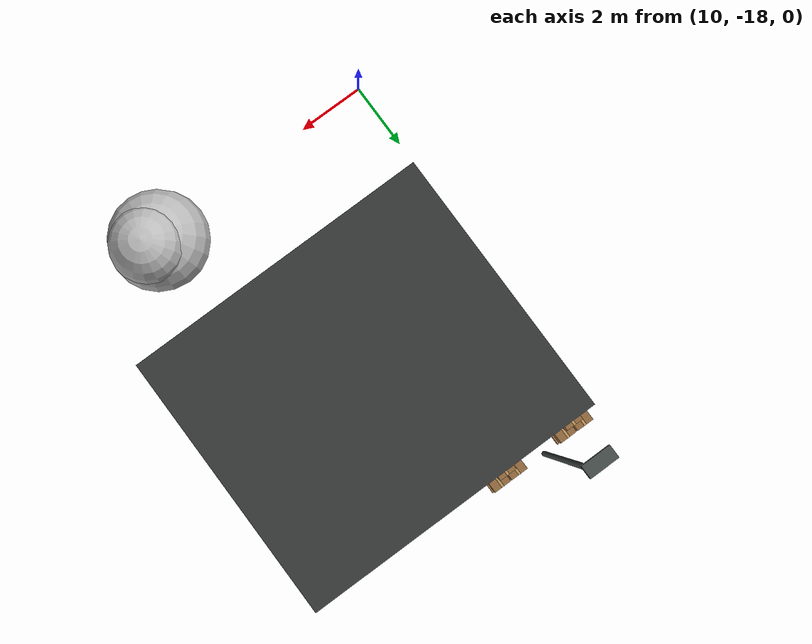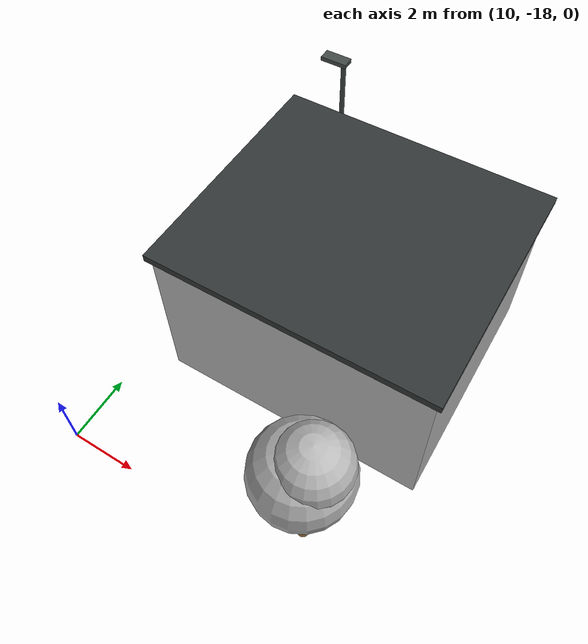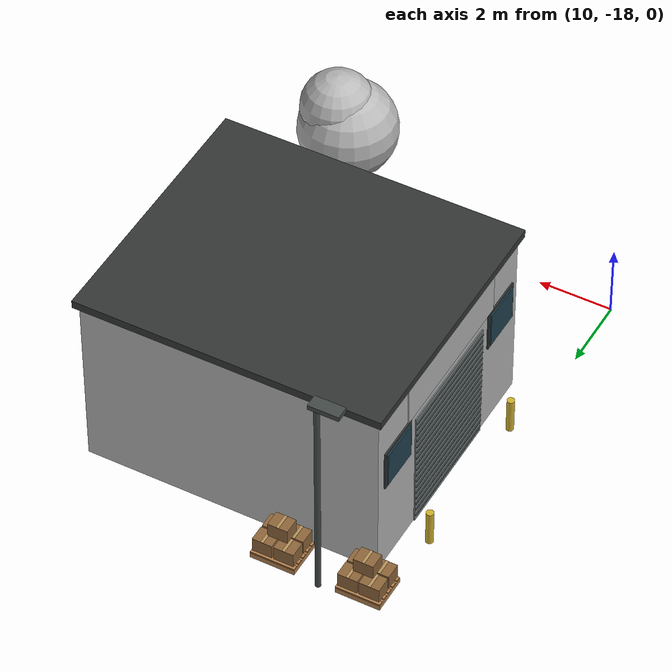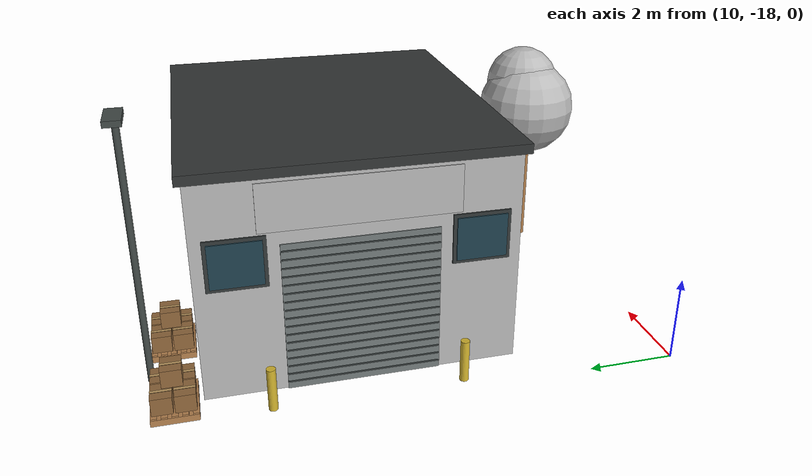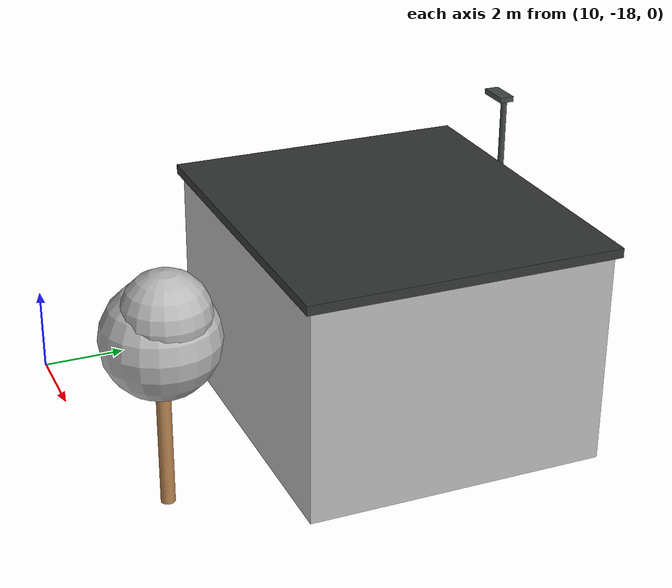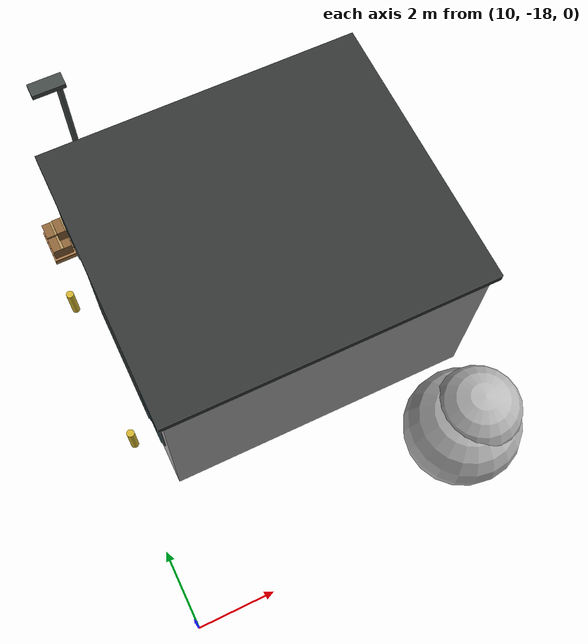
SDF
<sdf version="1.5">
 <world name="default">
  <include><uri>model://sun</uri></include>
  <model name="brick_warehouse">
   <static>true</static>
   <pose>15 -11 0.003 0 0 0</pose>
   <link name="structure">
    <visual name="main_building">
     <pose>0 0 2.5 0 0 0</pose>
     <geometry><box><size>8 7 5</size></box></geometry>
     <material>
      <script>
       <uri>file:///home/fxxk/px4_agent/scene/materials/scripts</uri>
       <uri>file:///home/fxxk/px4_agent/scene/materials/textures</uri>
       <name>Yard/brick</name>
      </script>
     </material>
    </visual>
    <collision name="main_building_collision">
     <pose>0 0 2.5 0 0 0</pose>
     <geometry><box><size>8 7 5</size></box></geometry>
     <surface><friction><ode><mu>1.0</mu><mu2>1.0</mu2></ode></friction></surface>
    </collision>
    <visual name="flat_roof">
     <pose>0 0 5.1 0 0 0</pose>
     <geometry><box><size>8.25 7.25 0.22</size></box></geometry>
     <material>
      <ambient>0.2 0.21 0.21 1</ambient>
      <diffuse>0.2 0.21 0.21 1</diffuse>
      <specular>0.04 0.04 0.04 1</specular>
     </material>
    </visual>
    <collision name="flat_roof_collision">
     <pose>0 0 5.1 0 0 0</pose>
     <geometry><box><size>8.25 7.25 0.22</size></box></geometry>
     <surface><friction><ode><mu>1.0</mu><mu2>1.0</mu2></ode></friction></surface>
    </collision>
    <visual name="loading_door">
     <pose>-4.022 0 1.75 0 0 0</pose>
     <geometry><box><size>0.032 3.4 3.5</size></box></geometry>
     <material>
      <ambient>0.45 0.48 0.48 1</ambient>
      <diffuse>0.45 0.48 0.48 1</diffuse>
      <specular>0.04 0.04 0.04 1</specular>
     </material>
    </visual>
    <visual name="door_slat_0">
     <pose>-4.048 0 0.18 0 0 0</pose>
     <geometry><box><size>0.036 3.36 0.025</size></box></geometry>
     <material>
      <ambient>0.27 0.3 0.3 1</ambient>
      <diffuse>0.27 0.3 0.3 1</diffuse>
      <specular>0.04 0.04 0.04 1</specular>
     </material>
    </visual>
    <visual name="door_slat_1">
     <pose>-4.048 0 0.378125 0 0 0</pose>
     <geometry><box><size>0.036 3.36 0.025</size></box></geometry>
     <material>
      <ambient>0.27 0.3 0.3 1</ambient>
      <diffuse>0.27 0.3 0.3 1</diffuse>
      <specular>0.04 0.04 0.04 1</specular>
     </material>
    </visual>
    <visual name="door_slat_2">
     <pose>-4.048 0 0.57625 0 0 0</pose>
     <geometry><box><size>0.036 3.36 0.025</size></box></geometry>
     <material>
      <ambient>0.27 0.3 0.3 1</ambient>
      <diffuse>0.27 0.3 0.3 1</diffuse>
      <specular>0.04 0.04 0.04 1</specular>
     </material>
    </visual>
    <visual name="door_slat_3">
     <pose>-4.048 0 0.774375 0 0 0</pose>
     <geometry><box><size>0.036 3.36 0.025</size></box></geometry>
     <material>
      <ambient>0.27 0.3 0.3 1</ambient>
      <diffuse>0.27 0.3 0.3 1</diffuse>
      <specular>0.04 0.04 0.04 1</specular>
     </material>
    </visual>
    <visual name="door_slat_4">
     <pose>-4.048 0 0.9725 0 0 0</pose>
     <geometry><box><size>0.036 3.36 0.025</size></box></geometry>
     <material>
      <ambient>0.27 0.3 0.3 1</ambient>
      <diffuse>0.27 0.3 0.3 1</diffuse>
      <specular>0.04 0.04 0.04 1</specular>
     </material>
    </visual>
    <visual name="door_slat_5">
     <pose>-4.048 0 1.170625 0 0 0</pose>
     <geometry><box><size>0.036 3.36 0.025</size></box></geometry>
     <material>
      <ambient>0.27 0.3 0.3 1</ambient>
      <diffuse>0.27 0.3 0.3 1</diffuse>
      <specular>0.04 0.04 0.04 1</specular>
     </material>
    </visual>
    <visual name="door_slat_6">
     <pose>-4.048 0 1.36875 0 0 0</pose>
     <geometry><box><size>0.036 3.36 0.025</size></box></geometry>
     <material>
      <ambient>0.27 0.3 0.3 1</ambient>
      <diffuse>0.27 0.3 0.3 1</diffuse>
      <specular>0.04 0.04 0.04 1</specular>
     </material>
    </visual>
    <visual name="door_slat_7">
     <pose>-4.048 0 1.566875 0 0 0</pose>
     <geometry><box><size>0.036 3.36 0.025</size></box></geometry>
     <material>
      <ambient>0.27 0.3 0.3 1</ambient>
      <diffuse>0.27 0.3 0.3 1</diffuse>
      <specular>0.04 0.04 0.04 1</specular>
     </material>
    </visual>
    <visual name="door_slat_8">
     <pose>-4.048 0 1.765 0 0 0</pose>
     <geometry><box><size>0.036 3.36 0.025</size></box></geometry>
     <material>
      <ambient>0.27 0.3 0.3 1</ambient>
      <diffuse>0.27 0.3 0.3 1</diffuse>
      <specular>0.04 0.04 0.04 1</specular>
     </material>
    </visual>
    <visual name="door_slat_9">
     <pose>-4.048 0 1.963125 0 0 0</pose>
     <geometry><box><size>0.036 3.36 0.025</size></box></geometry>
     <material>
      <ambient>0.27 0.3 0.3 1</ambient>
      <diffuse>0.27 0.3 0.3 1</diffuse>
      <specular>0.04 0.04 0.04 1</specular>
     </material>
    </visual>
    <visual name="door_slat_10">
     <pose>-4.048 0 2.16125 0 0 0</pose>
     <geometry><box><size>0.036 3.36 0.025</size></box></geometry>
     <material>
      <ambient>0.27 0.3 0.3 1</ambient>
      <diffuse>0.27 0.3 0.3 1</diffuse>
      <specular>0.04 0.04 0.04 1</specular>
     </material>
    </visual>
    <visual name="door_slat_11">
     <pose>-4.048 0 2.359375 0 0 0</pose>
     <geometry><box><size>0.036 3.36 0.025</size></box></geometry>
     <material>
      <ambient>0.27 0.3 0.3 1</ambient>
      <diffuse>0.27 0.3 0.3 1</diffuse>
      <specular>0.04 0.04 0.04 1</specular>
     </material>
    </visual>
    <visual name="door_slat_12">
     <pose>-4.048 0 2.5575 0 0 0</pose>
     <geometry><box><size>0.036 3.36 0.025</size></box></geometry>
     <material>
      <ambient>0.27 0.3 0.3 1</ambient>
      <diffuse>0.27 0.3 0.3 1</diffuse>
      <specular>0.04 0.04 0.04 1</specular>
     </material>
    </visual>
    <visual name="door_slat_13">
     <pose>-4.048 0 2.755625 0 0 0</pose>
     <geometry><box><size>0.036 3.36 0.025</size></box></geometry>
     <material>
      <ambient>0.27 0.3 0.3 1</ambient>
      <diffuse>0.27 0.3 0.3 1</diffuse>
      <specular>0.04 0.04 0.04 1</specular>
     </material>
    </visual>
    <visual name="door_slat_14">
     <pose>-4.048 0 2.95375 0 0 0</pose>
     <geometry><box><size>0.036 3.36 0.025</size></box></geometry>
     <material>
      <ambient>0.27 0.3 0.3 1</ambient>
      <diffuse>0.27 0.3 0.3 1</diffuse>
      <specular>0.04 0.04 0.04 1</specular>
     </material>
    </visual>
    <visual name="door_slat_15">
     <pose>-4.048 0 3.151875 0 0 0</pose>
     <geometry><box><size>0.036 3.36 0.025</size></box></geometry>
     <material>
      <ambient>0.27 0.3 0.3 1</ambient>
      <diffuse>0.27 0.3 0.3 1</diffuse>
      <specular>0.04 0.04 0.04 1</specular>
     </material>
    </visual>
    <visual name="door_slat_16">
     <pose>-4.048 0 3.35 0 0 0</pose>
     <geometry><box><size>0.036 3.36 0.025</size></box></geometry>
     <material>
      <ambient>0.27 0.3 0.3 1</ambient>
      <diffuse>0.27 0.3 0.3 1</diffuse>
      <specular>0.04 0.04 0.04 1</specular>
     </material>
    </visual>
    <visual name="front_window_frame_-1">
     <pose>-4.033 -2.6 3.17 0 0 0</pose>
     <geometry><box><size>0.044 1.28 1.15</size></box></geometry>
     <material>
      <ambient>0.2 0.22 0.22 1</ambient>
      <diffuse>0.2 0.22 0.22 1</diffuse>
      <specular>0.04 0.04 0.04 1</specular>
     </material>
    </visual>
    <visual name="front_window_-1">
     <pose>-4.064 -2.6 3.17 0 0 0</pose>
     <geometry><box><size>0.048 1.12 0.99</size></box></geometry>
     <material>
      <ambient>0.12 0.25 0.3 1</ambient>
      <diffuse>0.12 0.25 0.3 1</diffuse>
      <specular>0.04 0.04 0.04 1</specular>
     </material>
    </visual>
    <visual name="front_window_frame_1">
     <pose>-4.033 2.6 3.17 0 0 0</pose>
     <geometry><box><size>0.044 1.28 1.15</size></box></geometry>
     <material>
      <ambient>0.2 0.22 0.22 1</ambient>
      <diffuse>0.2 0.22 0.22 1</diffuse>
      <specular>0.04 0.04 0.04 1</specular>
     </material>
    </visual>
    <visual name="front_window_1">
     <pose>-4.064 2.6 3.17 0 0 0</pose>
     <geometry><box><size>0.048 1.12 0.99</size></box></geometry>
     <material>
      <ambient>0.12 0.25 0.3 1</ambient>
      <diffuse>0.12 0.25 0.3 1</diffuse>
      <specular>0.04 0.04 0.04 1</specular>
     </material>
    </visual>
    <visual name="warehouse_name">
     <pose>-4.06 0 4.35 0 0 0</pose>
     <geometry><box><size>0.028 4.3 1.075</size></box></geometry>
     <material>
      <script>
       <uri>file:///home/fxxk/px4_agent/scene/materials/scripts</uri>
       <uri>file:///home/fxxk/px4_agent/scene/materials/textures</uri>
       <name>Yard/warehouse_sign</name>
      </script>
     </material>
    </visual>
    <visual name="dock_bollard_0">
     <pose>-4.65 -2.1 0.5 0 0 0</pose>
     <geometry><cylinder><radius>0.1</radius><length>1</length></cylinder></geometry>
     <material>
      <ambient>0.82 0.7 0.18 1</ambient>
      <diffuse>0.82 0.7 0.18 1</diffuse>
      <specular>0.04 0.04 0.04 1</specular>
     </material>
    </visual>
    <collision name="dock_bollard_0_collision">
     <pose>-4.65 -2.1 0.5 0 0 0</pose>
     <geometry><cylinder><radius>0.1</radius><length>1</length></cylinder></geometry>
     <surface><friction><ode><mu>1.0</mu><mu2>1.0</mu2></ode></friction></surface>
    </collision>
    <visual name="dock_bollard_1">
     <pose>-4.65 2.1 0.5 0 0 0</pose>
     <geometry><cylinder><radius>0.1</radius><length>1</length></cylinder></geometry>
     <material>
      <ambient>0.82 0.7 0.18 1</ambient>
      <diffuse>0.82 0.7 0.18 1</diffuse>
      <specular>0.04 0.04 0.04 1</specular>
     </material>
    </visual>
    <collision name="dock_bollard_1_collision">
     <pose>-4.65 2.1 0.5 0 0 0</pose>
     <geometry><cylinder><radius>0.1</radius><length>1</length></cylinder></geometry>
     <surface><friction><ode><mu>1.0</mu><mu2>1.0</mu2></ode></friction></surface>
    </collision>
   </link>
  </model>
  <model name="cartons_pallet_1">
   <static>true</static>
   <pose>10.95 -6.9 0.003 0 0 0</pose>
   <link name="structure">
    <visual name="pallet_collision_base">
     <pose>0 0 0.075 0 0 0</pose>
     <geometry><box><size>1.2 1 0.15</size></box></geometry>
     <material>
      <script>
       <uri>file:///home/fxxk/px4_agent/scene/materials/scripts</uri>
       <uri>file:///home/fxxk/px4_agent/scene/materials/textures</uri>
       <name>Yard/wood</name>
      </script>
     </material>
    </visual>
    <collision name="pallet_collision_base_collision">
     <pose>0 0 0.075 0 0 0</pose>
     <geometry><box><size>1.2 1 0.15</size></box></geometry>
     <surface><friction><ode><mu>1.0</mu><mu2>1.0</mu2></ode></friction></surface>
    </collision>
    <visual name="pallet_slat_0">
     <pose>0 -0.43 0.168 0 0 0</pose>
     <geometry><box><size>1.2 0.13 0.035</size></box></geometry>
     <material>
      <script>
       <uri>file:///home/fxxk/px4_agent/scene/materials/scripts</uri>
       <uri>file:///home/fxxk/px4_agent/scene/materials/textures</uri>
       <name>Yard/wood</name>
      </script>
     </material>
    </visual>
    <visual name="pallet_slat_1">
     <pose>0 -0.215 0.168 0 0 0</pose>
     <geometry><box><size>1.2 0.13 0.035</size></box></geometry>
     <material>
      <script>
       <uri>file:///home/fxxk/px4_agent/scene/materials/scripts</uri>
       <uri>file:///home/fxxk/px4_agent/scene/materials/textures</uri>
       <name>Yard/wood</name>
      </script>
     </material>
    </visual>
    <visual name="pallet_slat_2">
     <pose>0 0 0.168 0 0 0</pose>
     <geometry><box><size>1.2 0.13 0.035</size></box></geometry>
     <material>
      <script>
       <uri>file:///home/fxxk/px4_agent/scene/materials/scripts</uri>
       <uri>file:///home/fxxk/px4_agent/scene/materials/textures</uri>
       <name>Yard/wood</name>
      </script>
     </material>
    </visual>
    <visual name="pallet_slat_3">
     <pose>0 0.215 0.168 0 0 0</pose>
     <geometry><box><size>1.2 0.13 0.035</size></box></geometry>
     <material>
      <script>
       <uri>file:///home/fxxk/px4_agent/scene/materials/scripts</uri>
       <uri>file:///home/fxxk/px4_agent/scene/materials/textures</uri>
       <name>Yard/wood</name>
      </script>
     </material>
    </visual>
    <visual name="pallet_slat_4">
     <pose>0 0.43 0.168 0 0 0</pose>
     <geometry><box><size>1.2 0.13 0.035</size></box></geometry>
     <material>
      <script>
       <uri>file:///home/fxxk/px4_agent/scene/materials/scripts</uri>
       <uri>file:///home/fxxk/px4_agent/scene/materials/textures</uri>
       <name>Yard/wood</name>
      </script>
     </material>
    </visual>
    <visual name="carton_0">
     <pose>-0.29 -0.24 0.43 0 0 0</pose>
     <geometry><box><size>0.54 0.44 0.4</size></box></geometry>
     <material>
      <ambient>0.56 0.4 0.23 1</ambient>
      <diffuse>0.56 0.4 0.23 1</diffuse>
      <specular>0.04 0.04 0.04 1</specular>
     </material>
    </visual>
    <collision name="carton_0_collision">
     <pose>-0.29 -0.24 0.43 0 0 0</pose>
     <geometry><box><size>0.54 0.44 0.4</size></box></geometry>
     <surface><friction><ode><mu>1.0</mu><mu2>1.0</mu2></ode></friction></surface>
    </collision>
    <visual name="packing_tape_0">
     <pose>-0.29 -0.24 0.635 0 0 0</pose>
     <geometry><box><size>0.075 0.442 0.008</size></box></geometry>
     <material>
      <ambient>0.72 0.58 0.36 1</ambient>
      <diffuse>0.72 0.58 0.36 1</diffuse>
      <specular>0.04 0.04 0.04 1</specular>
     </material>
    </visual>
    <visual name="carton_1">
     <pose>0.29 -0.24 0.43 0 0 0</pose>
     <geometry><box><size>0.54 0.44 0.4</size></box></geometry>
     <material>
      <ambient>0.56 0.4 0.23 1</ambient>
      <diffuse>0.56 0.4 0.23 1</diffuse>
      <specular>0.04 0.04 0.04 1</specular>
     </material>
    </visual>
    <collision name="carton_1_collision">
     <pose>0.29 -0.24 0.43 0 0 0</pose>
     <geometry><box><size>0.54 0.44 0.4</size></box></geometry>
     <surface><friction><ode><mu>1.0</mu><mu2>1.0</mu2></ode></friction></surface>
    </collision>
    <visual name="packing_tape_1">
     <pose>0.29 -0.24 0.635 0 0 0</pose>
     <geometry><box><size>0.075 0.442 0.008</size></box></geometry>
     <material>
      <ambient>0.72 0.58 0.36 1</ambient>
      <diffuse>0.72 0.58 0.36 1</diffuse>
      <specular>0.04 0.04 0.04 1</specular>
     </material>
    </visual>
    <visual name="carton_2">
     <pose>-0.29 0.24 0.43 0 0 0</pose>
     <geometry><box><size>0.54 0.44 0.4</size></box></geometry>
     <material>
      <ambient>0.56 0.4 0.23 1</ambient>
      <diffuse>0.56 0.4 0.23 1</diffuse>
      <specular>0.04 0.04 0.04 1</specular>
     </material>
    </visual>
    <collision name="carton_2_collision">
     <pose>-0.29 0.24 0.43 0 0 0</pose>
     <geometry><box><size>0.54 0.44 0.4</size></box></geometry>
     <surface><friction><ode><mu>1.0</mu><mu2>1.0</mu2></ode></friction></surface>
    </collision>
    <visual name="packing_tape_2">
     <pose>-0.29 0.24 0.635 0 0 0</pose>
     <geometry><box><size>0.075 0.442 0.008</size></box></geometry>
     <material>
      <ambient>0.72 0.58 0.36 1</ambient>
      <diffuse>0.72 0.58 0.36 1</diffuse>
      <specular>0.04 0.04 0.04 1</specular>
     </material>
    </visual>
    <visual name="carton_3">
     <pose>0.29 0.24 0.43 0 0 0</pose>
     <geometry><box><size>0.54 0.44 0.4</size></box></geometry>
     <material>
      <ambient>0.56 0.4 0.23 1</ambient>
      <diffuse>0.56 0.4 0.23 1</diffuse>
      <specular>0.04 0.04 0.04 1</specular>
     </material>
    </visual>
    <collision name="carton_3_collision">
     <pose>0.29 0.24 0.43 0 0 0</pose>
     <geometry><box><size>0.54 0.44 0.4</size></box></geometry>
     <surface><friction><ode><mu>1.0</mu><mu2>1.0</mu2></ode></friction></surface>
    </collision>
    <visual name="packing_tape_3">
     <pose>0.29 0.24 0.635 0 0 0</pose>
     <geometry><box><size>0.075 0.442 0.008</size></box></geometry>
     <material>
      <ambient>0.72 0.58 0.36 1</ambient>
      <diffuse>0.72 0.58 0.36 1</diffuse>
      <specular>0.04 0.04 0.04 1</specular>
     </material>
    </visual>
    <visual name="carton_4">
     <pose>0 0 0.87 0 0 0</pose>
     <geometry><box><size>0.54 0.44 0.4</size></box></geometry>
     <material>
      <ambient>0.56 0.4 0.23 1</ambient>
      <diffuse>0.56 0.4 0.23 1</diffuse>
      <specular>0.04 0.04 0.04 1</specular>
     </material>
    </visual>
    <collision name="carton_4_collision">
     <pose>0 0 0.87 0 0 0</pose>
     <geometry><box><size>0.54 0.44 0.4</size></box></geometry>
     <surface><friction><ode><mu>1.0</mu><mu2>1.0</mu2></ode></friction></surface>
    </collision>
    <visual name="packing_tape_4">
     <pose>0 0 1.075 0 0 0</pose>
     <geometry><box><size>0.075 0.442 0.008</size></box></geometry>
     <material>
      <ambient>0.72 0.58 0.36 1</ambient>
      <diffuse>0.72 0.58 0.36 1</diffuse>
      <specular>0.04 0.04 0.04 1</specular>
     </material>
    </visual>
   </link>
  </model>
  <model name="cartons_pallet_2">
   <static>true</static>
   <pose>13.25 -6.9 0.003 0 0 0</pose>
   <link name="structure">
    <visual name="pallet_collision_base">
     <pose>0 0 0.075 0 0 0</pose>
     <geometry><box><size>1.2 1 0.15</size></box></geometry>
     <material>
      <script>
       <uri>file:///home/fxxk/px4_agent/scene/materials/scripts</uri>
       <uri>file:///home/fxxk/px4_agent/scene/materials/textures</uri>
       <name>Yard/wood</name>
      </script>
     </material>
    </visual>
    <collision name="pallet_collision_base_collision">
     <pose>0 0 0.075 0 0 0</pose>
     <geometry><box><size>1.2 1 0.15</size></box></geometry>
     <surface><friction><ode><mu>1.0</mu><mu2>1.0</mu2></ode></friction></surface>
    </collision>
    <visual name="pallet_slat_0">
     <pose>0 -0.43 0.168 0 0 0</pose>
     <geometry><box><size>1.2 0.13 0.035</size></box></geometry>
     <material>
      <script>
       <uri>file:///home/fxxk/px4_agent/scene/materials/scripts</uri>
       <uri>file:///home/fxxk/px4_agent/scene/materials/textures</uri>
       <name>Yard/wood</name>
      </script>
     </material>
    </visual>
    <visual name="pallet_slat_1">
     <pose>0 -0.215 0.168 0 0 0</pose>
     <geometry><box><size>1.2 0.13 0.035</size></box></geometry>
     <material>
      <script>
       <uri>file:///home/fxxk/px4_agent/scene/materials/scripts</uri>
       <uri>file:///home/fxxk/px4_agent/scene/materials/textures</uri>
       <name>Yard/wood</name>
      </script>
     </material>
    </visual>
    <visual name="pallet_slat_2">
     <pose>0 0 0.168 0 0 0</pose>
     <geometry><box><size>1.2 0.13 0.035</size></box></geometry>
     <material>
      <script>
       <uri>file:///home/fxxk/px4_agent/scene/materials/scripts</uri>
       <uri>file:///home/fxxk/px4_agent/scene/materials/textures</uri>
       <name>Yard/wood</name>
      </script>
     </material>
    </visual>
    <visual name="pallet_slat_3">
     <pose>0 0.215 0.168 0 0 0</pose>
     <geometry><box><size>1.2 0.13 0.035</size></box></geometry>
     <material>
      <script>
       <uri>file:///home/fxxk/px4_agent/scene/materials/scripts</uri>
       <uri>file:///home/fxxk/px4_agent/scene/materials/textures</uri>
       <name>Yard/wood</name>
      </script>
     </material>
    </visual>
    <visual name="pallet_slat_4">
     <pose>0 0.43 0.168 0 0 0</pose>
     <geometry><box><size>1.2 0.13 0.035</size></box></geometry>
     <material>
      <script>
       <uri>file:///home/fxxk/px4_agent/scene/materials/scripts</uri>
       <uri>file:///home/fxxk/px4_agent/scene/materials/textures</uri>
       <name>Yard/wood</name>
      </script>
     </material>
    </visual>
    <visual name="carton_0">
     <pose>-0.29 -0.24 0.43 0 0 0</pose>
     <geometry><box><size>0.54 0.44 0.4</size></box></geometry>
     <material>
      <ambient>0.56 0.4 0.23 1</ambient>
      <diffuse>0.56 0.4 0.23 1</diffuse>
      <specular>0.04 0.04 0.04 1</specular>
     </material>
    </visual>
    <collision name="carton_0_collision">
     <pose>-0.29 -0.24 0.43 0 0 0</pose>
     <geometry><box><size>0.54 0.44 0.4</size></box></geometry>
     <surface><friction><ode><mu>1.0</mu><mu2>1.0</mu2></ode></friction></surface>
    </collision>
    <visual name="packing_tape_0">
     <pose>-0.29 -0.24 0.635 0 0 0</pose>
     <geometry><box><size>0.075 0.442 0.008</size></box></geometry>
     <material>
      <ambient>0.72 0.58 0.36 1</ambient>
      <diffuse>0.72 0.58 0.36 1</diffuse>
      <specular>0.04 0.04 0.04 1</specular>
     </material>
    </visual>
    <visual name="carton_1">
     <pose>0.29 -0.24 0.43 0 0 0</pose>
     <geometry><box><size>0.54 0.44 0.4</size></box></geometry>
     <material>
      <ambient>0.56 0.4 0.23 1</ambient>
      <diffuse>0.56 0.4 0.23 1</diffuse>
      <specular>0.04 0.04 0.04 1</specular>
     </material>
    </visual>
    <collision name="carton_1_collision">
     <pose>0.29 -0.24 0.43 0 0 0</pose>
     <geometry><box><size>0.54 0.44 0.4</size></box></geometry>
     <surface><friction><ode><mu>1.0</mu><mu2>1.0</mu2></ode></friction></surface>
    </collision>
    <visual name="packing_tape_1">
     <pose>0.29 -0.24 0.635 0 0 0</pose>
     <geometry><box><size>0.075 0.442 0.008</size></box></geometry>
     <material>
      <ambient>0.72 0.58 0.36 1</ambient>
      <diffuse>0.72 0.58 0.36 1</diffuse>
      <specular>0.04 0.04 0.04 1</specular>
     </material>
    </visual>
    <visual name="carton_2">
     <pose>-0.29 0.24 0.43 0 0 0</pose>
     <geometry><box><size>0.54 0.44 0.4</size></box></geometry>
     <material>
      <ambient>0.56 0.4 0.23 1</ambient>
      <diffuse>0.56 0.4 0.23 1</diffuse>
      <specular>0.04 0.04 0.04 1</specular>
     </material>
    </visual>
    <collision name="carton_2_collision">
     <pose>-0.29 0.24 0.43 0 0 0</pose>
     <geometry><box><size>0.54 0.44 0.4</size></box></geometry>
     <surface><friction><ode><mu>1.0</mu><mu2>1.0</mu2></ode></friction></surface>
    </collision>
    <visual name="packing_tape_2">
     <pose>-0.29 0.24 0.635 0 0 0</pose>
     <geometry><box><size>0.075 0.442 0.008</size></box></geometry>
     <material>
      <ambient>0.72 0.58 0.36 1</ambient>
      <diffuse>0.72 0.58 0.36 1</diffuse>
      <specular>0.04 0.04 0.04 1</specular>
     </material>
    </visual>
    <visual name="carton_3">
     <pose>0.29 0.24 0.43 0 0 0</pose>
     <geometry><box><size>0.54 0.44 0.4</size></box></geometry>
     <material>
      <ambient>0.56 0.4 0.23 1</ambient>
      <diffuse>0.56 0.4 0.23 1</diffuse>
      <specular>0.04 0.04 0.04 1</specular>
     </material>
    </visual>
    <collision name="carton_3_collision">
     <pose>0.29 0.24 0.43 0 0 0</pose>
     <geometry><box><size>0.54 0.44 0.4</size></box></geometry>
     <surface><friction><ode><mu>1.0</mu><mu2>1.0</mu2></ode></friction></surface>
    </collision>
    <visual name="packing_tape_3">
     <pose>0.29 0.24 0.635 0 0 0</pose>
     <geometry><box><size>0.075 0.442 0.008</size></box></geometry>
     <material>
      <ambient>0.72 0.58 0.36 1</ambient>
      <diffuse>0.72 0.58 0.36 1</diffuse>
      <specular>0.04 0.04 0.04 1</specular>
     </material>
    </visual>
    <visual name="carton_4">
     <pose>0 0 0.87 0 0 0</pose>
     <geometry><box><size>0.54 0.44 0.4</size></box></geometry>
     <material>
      <ambient>0.56 0.4 0.23 1</ambient>
      <diffuse>0.56 0.4 0.23 1</diffuse>
      <specular>0.04 0.04 0.04 1</specular>
     </material>
    </visual>
    <collision name="carton_4_collision">
     <pose>0 0 0.87 0 0 0</pose>
     <geometry><box><size>0.54 0.44 0.4</size></box></geometry>
     <surface><friction><ode><mu>1.0</mu><mu2>1.0</mu2></ode></friction></surface>
    </collision>
    <visual name="packing_tape_4">
     <pose>0 0 1.075 0 0 0</pose>
     <geometry><box><size>0.075 0.442 0.008</size></box></geometry>
     <material>
      <ambient>0.72 0.58 0.36 1</ambient>
      <diffuse>0.72 0.58 0.36 1</diffuse>
      <specular>0.04 0.04 0.04 1</specular>
     </material>
    </visual>
   </link>
  </model>
  <model name="yard_tree_7">
   <static>true</static>
   <pose>17 -17 0.003 0 0 0</pose>
   <link name="structure">
    <visual name="trunk">
     <pose>0 0 1.6 0 0 0</pose>
     <geometry><cylinder><radius>0.16</radius><length>3.2</length></cylinder></geometry>
     <material>
      <script>
       <uri>file:///home/fxxk/px4_agent/scene/materials/scripts</uri>
       <uri>file:///home/fxxk/px4_agent/scene/materials/textures</uri>
       <name>Yard/wood</name>
      </script>
     </material>
    </visual>
    <collision name="trunk_collision">
     <pose>0 0 1.6 0 0 0</pose>
     <geometry><cylinder><radius>0.16</radius><length>3.2</length></cylinder></geometry>
     <surface><friction><ode><mu>1.0</mu><mu2>1.0</mu2></ode></friction></surface>
    </collision>
    <visual name="crown">
     <pose>0 0 3.95 0 0 0</pose>
     <geometry><sphere><radius>1.3</radius></sphere></geometry>
     <material>
      <script>
       <uri>file:///home/fxxk/px4_agent/scene/materials/scripts</uri>
       <uri>file:///home/fxxk/px4_agent/scene/materials/textures</uri>
       <name>Yard/foliage</name>
      </script>
     </material>
    </visual>
    <collision name="crown_collision">
     <pose>0 0 3.95 0 0 0</pose>
     <geometry><sphere><radius>1.3</radius></sphere></geometry>
     <surface><friction><ode><mu>1.0</mu><mu2>1.0</mu2></ode></friction></surface>
    </collision>
    <visual name="crown_top">
     <pose>0.25 0.06 4.6 0 0 0</pose>
     <geometry><sphere><radius>0.9750000000000001</radius></sphere></geometry>
     <material>
      <script>
       <uri>file:///home/fxxk/px4_agent/scene/materials/scripts</uri>
       <uri>file:///home/fxxk/px4_agent/scene/materials/textures</uri>
       <name>Yard/foliage</name>
      </script>
     </material>
    </visual>
   </link>
  </model>
  <model name="street_lamp_south">
   <static>true</static>
   <pose>12 -6.4 0.003 0 0 0</pose>
   <link name="structure">
    <visual name="lamp_pole">
     <pose>0 0 3.075 0 0 0</pose>
     <geometry><cylinder><radius>0.075</radius><length>6.15</length></cylinder></geometry>
     <material>
      <ambient>0.26 0.29 0.28 1</ambient>
      <diffuse>0.26 0.29 0.28 1</diffuse>
      <specular>0.04 0.04 0.04 1</specular>
     </material>
    </visual>
    <collision name="lamp_pole_collision">
     <pose>0 0 3.075 0 0 0</pose>
     <geometry><cylinder><radius>0.075</radius><length>6.15</length></cylinder></geometry>
     <surface><friction><ode><mu>1.0</mu><mu2>1.0</mu2></ode></friction></surface>
    </collision>
    <visual name="lamp_head">
     <pose>-0.26 0 6.17 0 0 0</pose>
     <geometry><box><size>0.82 0.36 0.13</size></box></geometry>
     <material>
      <ambient>0.26 0.29 0.28 1</ambient>
      <diffuse>0.26 0.29 0.28 1</diffuse>
      <specular>0.04 0.04 0.04 1</specular>
     </material>
    </visual>
    <visual name="lamp_glass">
     <pose>-0.26 0 6.098 0 0 0</pose>
     <geometry><box><size>0.67 0.28 0.015</size></box></geometry>
     <cast_shadows>false</cast_shadows>
     <material>
      <ambient>0.82 0.82 0.66 1</ambient>
      <diffuse>0.82 0.82 0.66 1</diffuse>
      <specular>0.04 0.04 0.04 1</specular>
     </material>
    </visual>
   </link>
  </model>
 </world>
</sdf>
